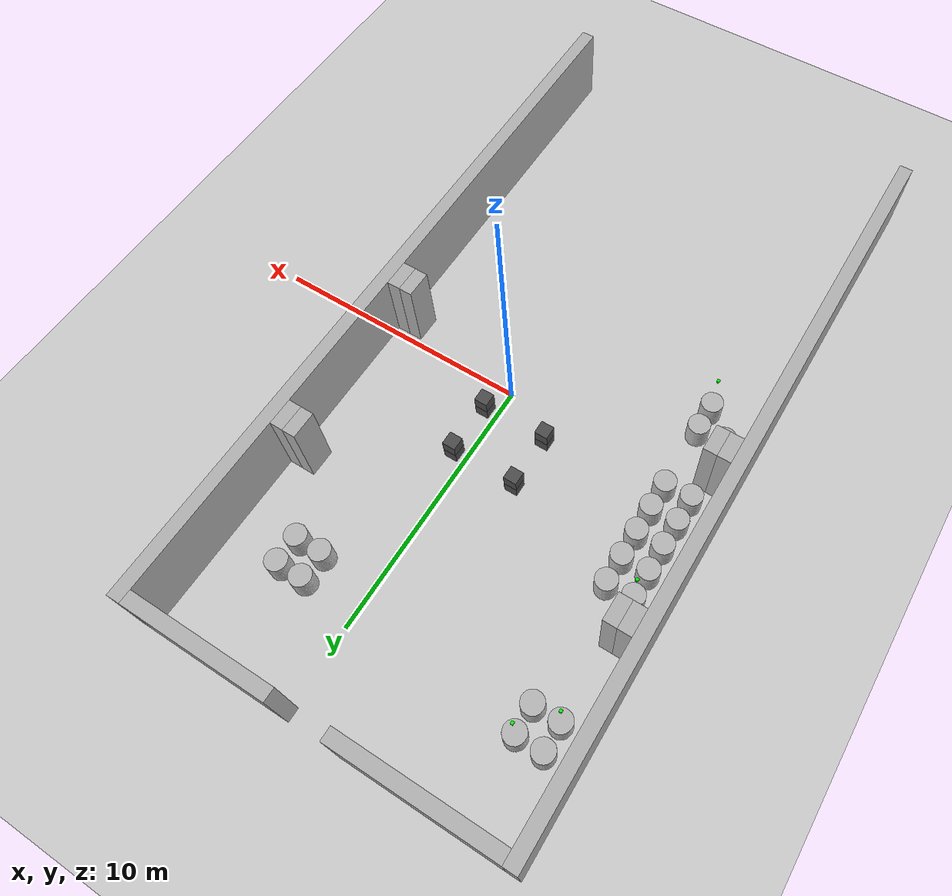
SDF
<sdf version="1.6">
 <world name="default">
  <include><uri>model://ground_plane</uri></include>
  <model name="wall_0">
   <pose frame="sim_world">-8.5 -0.75 1.5 0 0 0</pose>
   <static>True</static>
   <link name="wall_0_link">
    <inertial>
     <mass>100</mass>
     <inertia>
      <ixx>0.166667</ixx>
      <ixy>0</ixy>
      <ixz>0</ixz>
      <iyy>0.166667</iyy>
      <iyz>0</iyz>
      <izz>0.166667</izz>
     </inertia>
    </inertial>
    <collision name="wall_0_collision">
     <geometry><box><size>0.5 28.0 3.0</size></box></geometry>
     <max_contacts>100</max_contacts>
    </collision>
    <visual name="wall_0_visual">
     <geometry><box><size>0.5 28.0 3.0</size></box></geometry>
     <material><ambient>0.7 0.7 0.7 1</ambient><diffuse>0.7 0.7 0.7 1</diffuse></material>
    </visual>
   </link>
  </model>
  <model name="wall_2">
   <pose frame="sim_world">-8.0 -0.75 1.5 0 0 0</pose>
   <static>True</static>
   <link name="wall_2_link">
    <inertial>
     <mass>100</mass>
     <inertia>
      <ixx>0.166667</ixx>
      <ixy>0</ixy>
      <ixz>0</ixz>
      <iyy>0.166667</iyy>
      <iyz>0</iyz>
      <izz>0.166667</izz>
     </inertia>
    </inertial>
    <collision name="wall_2_collision">
     <geometry><box><size>0.5 1.0 3.0</size></box></geometry>
     <max_contacts>100</max_contacts>
    </collision>
    <visual name="wall_2_visual">
     <geometry><box><size>0.5 1.0 3.0</size></box></geometry>
     <material><ambient>0.7 0.7 0.7 1</ambient><diffuse>0.7 0.7 0.7 1</diffuse></material>
    </visual>
   </link>
  </model>
  <model name="wall_3">
   <pose frame="sim_world">-8.0 5.75 1.5 0 0 0</pose>
   <static>True</static>
   <link name="wall_3_link">
    <inertial>
     <mass>100</mass>
     <inertia>
      <ixx>0.166667</ixx>
      <ixy>0</ixy>
      <ixz>0</ixz>
      <iyy>0.166667</iyy>
      <iyz>0</iyz>
      <izz>0.166667</izz>
     </inertia>
    </inertial>
    <collision name="wall_3_collision">
     <geometry><box><size>0.5 1.0 3.0</size></box></geometry>
     <max_contacts>100</max_contacts>
    </collision>
    <visual name="wall_3_visual">
     <geometry><box><size>0.5 1.0 3.0</size></box></geometry>
     <material><ambient>0.7 0.7 0.7 1</ambient><diffuse>0.7 0.7 0.7 1</diffuse></material>
    </visual>
   </link>
  </model>
  <model name="wall_5">
   <pose frame="sim_world">-7.5 -0.75 1.5 0 0 0</pose>
   <static>True</static>
   <link name="wall_5_link">
    <inertial>
     <mass>100</mass>
     <inertia>
      <ixx>0.166667</ixx>
      <ixy>0</ixy>
      <ixz>0</ixz>
      <iyy>0.166667</iyy>
      <iyz>0</iyz>
      <izz>0.166667</izz>
     </inertia>
    </inertial>
    <collision name="wall_5_collision">
     <geometry><box><size>0.5 1.0 3.0</size></box></geometry>
     <max_contacts>100</max_contacts>
    </collision>
    <visual name="wall_5_visual">
     <geometry><box><size>0.5 1.0 3.0</size></box></geometry>
     <material><ambient>0.7 0.7 0.7 1</ambient><diffuse>0.7 0.7 0.7 1</diffuse></material>
    </visual>
   </link>
  </model>
  <model name="wall_6">
   <pose frame="sim_world">-7.5 5.75 1.5 0 0 0</pose>
   <static>True</static>
   <link name="wall_6_link">
    <inertial>
     <mass>100</mass>
     <inertia>
      <ixx>0.166667</ixx>
      <ixy>0</ixy>
      <ixz>0</ixz>
      <iyy>0.166667</iyy>
      <iyz>0</iyz>
      <izz>0.166667</izz>
     </inertia>
    </inertial>
    <collision name="wall_6_collision">
     <geometry><box><size>0.5 1.0 3.0</size></box></geometry>
     <max_contacts>100</max_contacts>
    </collision>
    <visual name="wall_6_visual">
     <geometry><box><size>0.5 1.0 3.0</size></box></geometry>
     <material><ambient>0.7 0.7 0.7 1</ambient><diffuse>0.7 0.7 0.7 1</diffuse></material>
    </visual>
   </link>
  </model>
  <model name="wall_8">
   <pose frame="sim_world">4.5 -0.75 1.5 0 0 0</pose>
   <static>True</static>
   <link name="wall_8_link">
    <inertial>
     <mass>100</mass>
     <inertia>
      <ixx>0.166667</ixx>
      <ixy>0</ixy>
      <ixz>0</ixz>
      <iyy>0.166667</iyy>
      <iyz>0</iyz>
      <izz>0.166667</izz>
     </inertia>
    </inertial>
    <collision name="wall_8_collision">
     <geometry><box><size>0.5 1.0 3.0</size></box></geometry>
     <max_contacts>100</max_contacts>
    </collision>
    <visual name="wall_8_visual">
     <geometry><box><size>0.5 1.0 3.0</size></box></geometry>
     <material><ambient>0.7 0.7 0.7 1</ambient><diffuse>0.7 0.7 0.7 1</diffuse></material>
    </visual>
   </link>
  </model>
  <model name="wall_9">
   <pose frame="sim_world">4.5 5.75 1.5 0 0 0</pose>
   <static>True</static>
   <link name="wall_9_link">
    <inertial>
     <mass>100</mass>
     <inertia>
      <ixx>0.166667</ixx>
      <ixy>0</ixy>
      <ixz>0</ixz>
      <iyy>0.166667</iyy>
      <iyz>0</iyz>
      <izz>0.166667</izz>
     </inertia>
    </inertial>
    <collision name="wall_9_collision">
     <geometry><box><size>0.5 1.0 3.0</size></box></geometry>
     <max_contacts>100</max_contacts>
    </collision>
    <visual name="wall_9_visual">
     <geometry><box><size>0.5 1.0 3.0</size></box></geometry>
     <material><ambient>0.7 0.7 0.7 1</ambient><diffuse>0.7 0.7 0.7 1</diffuse></material>
    </visual>
   </link>
  </model>
  <model name="wall_11">
   <pose frame="sim_world">5.0 -0.75 1.5 0 0 0</pose>
   <static>True</static>
   <link name="wall_11_link">
    <inertial>
     <mass>100</mass>
     <inertia>
      <ixx>0.166667</ixx>
      <ixy>0</ixy>
      <ixz>0</ixz>
      <iyy>0.166667</iyy>
      <iyz>0</iyz>
      <izz>0.166667</izz>
     </inertia>
    </inertial>
    <collision name="wall_11_collision">
     <geometry><box><size>0.5 1.0 3.0</size></box></geometry>
     <max_contacts>100</max_contacts>
    </collision>
    <visual name="wall_11_visual">
     <geometry><box><size>0.5 1.0 3.0</size></box></geometry>
     <material><ambient>0.7 0.7 0.7 1</ambient><diffuse>0.7 0.7 0.7 1</diffuse></material>
    </visual>
   </link>
  </model>
  <model name="wall_12">
   <pose frame="sim_world">5.0 5.75 1.5 0 0 0</pose>
   <static>True</static>
   <link name="wall_12_link">
    <inertial>
     <mass>100</mass>
     <inertia>
      <ixx>0.166667</ixx>
      <ixy>0</ixy>
      <ixz>0</ixz>
      <iyy>0.166667</iyy>
      <iyz>0</iyz>
      <izz>0.166667</izz>
     </inertia>
    </inertial>
    <collision name="wall_12_collision">
     <geometry><box><size>0.5 1.0 3.0</size></box></geometry>
     <max_contacts>100</max_contacts>
    </collision>
    <visual name="wall_12_visual">
     <geometry><box><size>0.5 1.0 3.0</size></box></geometry>
     <material><ambient>0.7 0.7 0.7 1</ambient><diffuse>0.7 0.7 0.7 1</diffuse></material>
    </visual>
   </link>
  </model>
  <model name="wall_13">
   <pose frame="sim_world">5.5 -0.75 1.5 0 0 0</pose>
   <static>True</static>
   <link name="wall_13_link">
    <inertial>
     <mass>100</mass>
     <inertia>
      <ixx>0.166667</ixx>
      <ixy>0</ixy>
      <ixz>0</ixz>
      <iyy>0.166667</iyy>
      <iyz>0</iyz>
      <izz>0.166667</izz>
     </inertia>
    </inertial>
    <collision name="wall_13_collision">
     <geometry><box><size>0.5 28.0 3.0</size></box></geometry>
     <max_contacts>100</max_contacts>
    </collision>
    <visual name="wall_13_visual">
     <geometry><box><size>0.5 28.0 3.0</size></box></geometry>
     <material><ambient>0.7 0.7 0.7 1</ambient><diffuse>0.7 0.7 0.7 1</diffuse></material>
    </visual>
   </link>
  </model>
  <model name="wall_15">
   <pose frame="sim_world">-5.25 13.0 1.5 0 0 0</pose>
   <static>True</static>
   <link name="wall_15_link">
    <inertial>
     <mass>100</mass>
     <inertia>
      <ixx>0.166667</ixx>
      <ixy>0</ixy>
      <ixz>0</ixz>
      <iyy>0.166667</iyy>
      <iyz>0</iyz>
      <izz>0.166667</izz>
     </inertia>
    </inertial>
    <collision name="wall_15_collision">
     <geometry><box><size>6.0 0.5 3.0</size></box></geometry>
     <max_contacts>100</max_contacts>
    </collision>
    <visual name="wall_15_visual">
     <geometry><box><size>6.0 0.5 3.0</size></box></geometry>
     <material><ambient>0.7 0.7 0.7 1</ambient><diffuse>0.7 0.7 0.7 1</diffuse></material>
    </visual>
   </link>
  </model>
  <model name="wall_16">
   <pose frame="sim_world">2.5 13.0 1.5 0 0 0</pose>
   <static>True</static>
   <link name="wall_16_link">
    <inertial>
     <mass>100</mass>
     <inertia>
      <ixx>0.166667</ixx>
      <ixy>0</ixy>
      <ixz>0</ixz>
      <iyy>0.166667</iyy>
      <iyz>0</iyz>
      <izz>0.166667</izz>
     </inertia>
    </inertial>
    <collision name="wall_16_collision">
     <geometry><box><size>5.5 0.5 3.0</size></box></geometry>
     <max_contacts>100</max_contacts>
    </collision>
    <visual name="wall_16_visual">
     <geometry><box><size>5.5 0.5 3.0</size></box></geometry>
     <material><ambient>0.7 0.7 0.7 1</ambient><diffuse>0.7 0.7 0.7 1</diffuse></material>
    </visual>
   </link>
  </model>
  <model name="box_0">
   <pose frame="sim_world">-2.0 1.0 0.25 0 -0 0</pose>
   <static>True</static>
   <link name="box_0_link">
    <inertial>
     <mass>100</mass>
     <inertia>
      <ixx>0.166667</ixx>
      <ixy>0</ixy>
      <ixz>0</ixz>
      <iyy>0.166667</iyy>
      <iyz>0</iyz>
      <izz>0.166667</izz>
     </inertia>
    </inertial>
    <collision name="box_0_collision">
     <geometry><box><size>0.5 0.5 0.5</size></box></geometry>
     <max_contacts>100</max_contacts>
    </collision>
    <visual name="box_0_visual">
     <geometry><box><size>0.5 0.5 0.5</size></box></geometry>
     <material><ambient>0.3 0.3 0.3 1</ambient><diffuse>0.3 0.3 0.3 1</diffuse></material>
    </visual>
   </link>
  </model>
  <model name="box_1">
   <pose frame="sim_world">-2.0 1.0 0.75 0 -0 0</pose>
   <static>True</static>
   <link name="box_1_link">
    <inertial>
     <mass>100</mass>
     <inertia>
      <ixx>0.166667</ixx>
      <ixy>0</ixy>
      <ixz>0</ixz>
      <iyy>0.166667</iyy>
      <iyz>0</iyz>
      <izz>0.166667</izz>
     </inertia>
    </inertial>
    <collision name="box_1_collision">
     <geometry><box><size>0.5 0.5 0.5</size></box></geometry>
     <max_contacts>100</max_contacts>
    </collision>
    <visual name="box_1_visual">
     <geometry><box><size>0.5 0.5 0.5</size></box></geometry>
     <material><ambient>0.3 0.3 0.3 1</ambient><diffuse>0.3 0.3 0.3 1</diffuse></material>
    </visual>
   </link>
  </model>
  <model name="box_2">
   <pose frame="sim_world">-2.0 3.0 0.25 0 -0 0</pose>
   <static>True</static>
   <link name="box_2_link">
    <inertial>
     <mass>100</mass>
     <inertia>
      <ixx>0.166667</ixx>
      <ixy>0</ixy>
      <ixz>0</ixz>
      <iyy>0.166667</iyy>
      <iyz>0</iyz>
      <izz>0.166667</izz>
     </inertia>
    </inertial>
    <collision name="box_2_collision">
     <geometry><box><size>0.5 0.5 0.5</size></box></geometry>
     <max_contacts>100</max_contacts>
    </collision>
    <visual name="box_2_visual">
     <geometry><box><size>0.5 0.5 0.5</size></box></geometry>
     <material><ambient>0.3 0.3 0.3 1</ambient><diffuse>0.3 0.3 0.3 1</diffuse></material>
    </visual>
   </link>
  </model>
  <model name="box_3">
   <pose frame="sim_world">-2.0 3.0 0.75 0 -0 0</pose>
   <static>True</static>
   <link name="box_3_link">
    <inertial>
     <mass>100</mass>
     <inertia>
      <ixx>0.166667</ixx>
      <ixy>0</ixy>
      <ixz>0</ixz>
      <iyy>0.166667</iyy>
      <iyz>0</iyz>
      <izz>0.166667</izz>
     </inertia>
    </inertial>
    <collision name="box_3_collision">
     <geometry><box><size>0.5 0.5 0.5</size></box></geometry>
     <max_contacts>100</max_contacts>
    </collision>
    <visual name="box_3_visual">
     <geometry><box><size>0.5 0.5 0.5</size></box></geometry>
     <material><ambient>0.3 0.3 0.3 1</ambient><diffuse>0.3 0.3 0.3 1</diffuse></material>
    </visual>
   </link>
  </model>
  <model name="box_22">
   <pose frame="sim_world">0.5 1.0 0.25 0 -0 0</pose>
   <static>True</static>
   <link name="box_22_link">
    <inertial>
     <mass>100</mass>
     <inertia>
      <ixx>0.166667</ixx>
      <ixy>0</ixy>
      <ixz>0</ixz>
      <iyy>0.166667</iyy>
      <iyz>0</iyz>
      <izz>0.166667</izz>
     </inertia>
    </inertial>
    <collision name="box_22_collision">
     <geometry><box><size>0.5 0.5 0.5</size></box></geometry>
     <max_contacts>100</max_contacts>
    </collision>
    <visual name="box_22_visual">
     <geometry><box><size>0.5 0.5 0.5</size></box></geometry>
     <material><ambient>0.3 0.3 0.3 1</ambient><diffuse>0.3 0.3 0.3 1</diffuse></material>
    </visual>
   </link>
  </model>
  <model name="box_23">
   <pose frame="sim_world">0.5 1.0 0.75 0 -0 0</pose>
   <static>True</static>
   <link name="box_23_link">
    <inertial>
     <mass>100</mass>
     <inertia>
      <ixx>0.166667</ixx>
      <ixy>0</ixy>
      <ixz>0</ixz>
      <iyy>0.166667</iyy>
      <iyz>0</iyz>
      <izz>0.166667</izz>
     </inertia>
    </inertial>
    <collision name="box_23_collision">
     <geometry><box><size>0.5 0.5 0.5</size></box></geometry>
     <max_contacts>100</max_contacts>
    </collision>
    <visual name="box_23_visual">
     <geometry><box><size>0.5 0.5 0.5</size></box></geometry>
     <material><ambient>0.3 0.3 0.3 1</ambient><diffuse>0.3 0.3 0.3 1</diffuse></material>
    </visual>
   </link>
  </model>
  <model name="box_24">
   <pose frame="sim_world">0.5 3.0 0.25 0 -0 0</pose>
   <static>True</static>
   <link name="box_24_link">
    <inertial>
     <mass>100</mass>
     <inertia>
      <ixx>0.166667</ixx>
      <ixy>0</ixy>
      <ixz>0</ixz>
      <iyy>0.166667</iyy>
      <iyz>0</iyz>
      <izz>0.166667</izz>
     </inertia>
    </inertial>
    <collision name="box_24_collision">
     <geometry><box><size>0.5 0.5 0.5</size></box></geometry>
     <max_contacts>100</max_contacts>
    </collision>
    <visual name="box_24_visual">
     <geometry><box><size>0.5 0.5 0.5</size></box></geometry>
     <material><ambient>0.3 0.3 0.3 1</ambient><diffuse>0.3 0.3 0.3 1</diffuse></material>
    </visual>
   </link>
  </model>
  <model name="box_25">
   <pose frame="sim_world">0.5 3.0 0.75 0 -0 0</pose>
   <static>True</static>
   <link name="box_25_link">
    <inertial>
     <mass>100</mass>
     <inertia>
      <ixx>0.166667</ixx>
      <ixy>0</ixy>
      <ixz>0</ixz>
      <iyy>0.166667</iyy>
      <iyz>0</iyz>
      <izz>0.166667</izz>
     </inertia>
    </inertial>
    <collision name="box_25_collision">
     <geometry><box><size>0.5 0.5 0.5</size></box></geometry>
     <max_contacts>100</max_contacts>
    </collision>
    <visual name="box_25_visual">
     <geometry><box><size>0.5 0.5 0.5</size></box></geometry>
     <material><ambient>0.3 0.3 0.3 1</ambient><diffuse>0.3 0.3 0.3 1</diffuse></material>
    </visual>
   </link>
  </model>
  <model name="barrel_10">
   <pose>-7.50114239477 -1.9993578155 0.5 0 -0 0</pose>
   <static>true</static>
   <link name="link_barrel_10">
    <collision name="collision_barrel_10">
     <geometry><mesh><uri>model://barrel_store_custom/models/barrel_10.dae</uri></mesh></geometry>
    </collision>
    <visual name="visual_barrel_10">
     <geometry><mesh><uri>model://barrel_store_custom/models/barrel_10.dae</uri></mesh></geometry>
    </visual>
   </link>
  </model>
  <model name="barrel_11">
   <pose>-7.50279670955 0.49588956778 0.5 0 -0 0</pose>
   <static>true</static>
   <link name="link_barrel_11">
    <collision name="collision_barrel_11">
     <geometry><mesh><uri>model://barrel_store_custom/models/barrel_11.dae</uri></mesh></geometry>
    </collision>
    <visual name="visual_barrel_11">
     <geometry><mesh><uri>model://barrel_store_custom/models/barrel_11.dae</uri></mesh></geometry>
    </visual>
   </link>
  </model>
  <model name="barrel_12">
   <pose>-7.50300625578 1.49810745039 0.5 0 -0 0</pose>
   <static>true</static>
   <link name="link_barrel_12">
    <collision name="collision_barrel_12">
     <geometry><mesh><uri>model://barrel_store_custom/models/barrel_12.dae</uri></mesh></geometry>
    </collision>
    <visual name="visual_barrel_12">
     <geometry><mesh><uri>model://barrel_store_custom/models/barrel_12.dae</uri></mesh></geometry>
    </visual>
   </link>
  </model>
  <model name="barrel_13">
   <pose>-7.49558838549 2.49713480999 0.5 0 -0 0</pose>
   <static>true</static>
   <link name="link_barrel_13">
    <collision name="collision_barrel_13">
     <geometry><mesh><uri>model://barrel_store_custom/models/barrel_13.dae</uri></mesh></geometry>
    </collision>
    <visual name="visual_barrel_13">
     <geometry><mesh><uri>model://barrel_store_custom/models/barrel_13.dae</uri></mesh></geometry>
    </visual>
   </link>
  </model>
  <model name="barrel_14">
   <pose>-7.50188878479 3.49967507384 0.5 0 -0 0</pose>
   <static>true</static>
   <link name="link_barrel_14">
    <collision name="collision_barrel_14">
     <geometry><mesh><uri>model://barrel_store_custom/models/barrel_14.dae</uri></mesh></geometry>
    </collision>
    <visual name="visual_barrel_14">
     <geometry><mesh><uri>model://barrel_store_custom/models/barrel_14.dae</uri></mesh></geometry>
    </visual>
   </link>
  </model>
  <model name="barrel_15">
   <pose>-7.50159085069 4.49686885913 0.5 0 -0 0</pose>
   <static>true</static>
   <link name="link_barrel_15">
    <collision name="collision_barrel_15">
     <geometry><mesh><uri>model://barrel_store_custom/models/barrel_15.dae</uri></mesh></geometry>
    </collision>
    <visual name="visual_barrel_15">
     <geometry><mesh><uri>model://barrel_store_custom/models/barrel_15.dae</uri></mesh></geometry>
    </visual>
   </link>
   <model name="radiation_source_barrel_15">
    <pose>0.00109201669693 0.00354701280594 -1.72853469849e-06 0 0 0</pose>
    <static>true</static>
    <link name="link_radiation_source_barrel_15">
     <visual name="visual_radiation_source_barrel_15_0">
      <geometry><box><size>0.1 0.1 0.1</size></box></geometry>
      <material><ambient>1 0.0  0 1.0</ambient><diffuse>1 0.0  0 1.0</diffuse></material>
     </visual>
     <visual name="visual_radiation_source_barrel_15_1">
      <pose>0 0 2.0 0 0 0</pose>
      <geometry><box><size>0.1 0.1 0.1</size></box></geometry>
      <material><ambient>0 1.0  0 1.0</ambient><diffuse>0 1.0  0 1.0</diffuse></material>
     </visual>
     <sensor name="radiation_source_barrel_15" type="radiation_source">
      <always_on>1</always_on>
      <update_rate>1.0</update_rate>
      <topic>source_6/gamma</topic>
      <plugin filename="libradiation_source_plugin.so" name="radiation_source_plugin"/>
     </sensor>
    </link>
   </model>
  </model>
  <model name="barrel_16">
   <pose>-7.50246693743 9.0035488383 0.5 0 -0 0</pose>
   <static>true</static>
   <link name="link_barrel_16">
    <collision name="collision_barrel_16">
     <geometry><mesh><uri>model://barrel_store_custom/models/barrel_16.dae</uri></mesh></geometry>
    </collision>
    <visual name="visual_barrel_16">
     <geometry><mesh><uri>model://barrel_store_custom/models/barrel_16.dae</uri></mesh></geometry>
    </visual>
   </link>
   <model name="radiation_source_barrel_16">
    <pose>0.00109201669693 0.00354701280594 -1.72853469849e-06 0 0 0</pose>
    <static>true</static>
    <link name="link_radiation_source_barrel_16">
     <visual name="visual_radiation_source_barrel_16_0">
      <geometry><box><size>0.1 0.1 0.1</size></box></geometry>
      <material><ambient>1 0.0  0 1.0</ambient><diffuse>1 0.0  0 1.0</diffuse></material>
     </visual>
     <visual name="visual_radiation_source_barrel_16_1">
      <pose>0 0 2.0 0 0 0</pose>
      <geometry><box><size>0.1 0.1 0.1</size></box></geometry>
      <material><ambient>0 1.0  0 1.0</ambient><diffuse>0 1.0  0 1.0</diffuse></material>
     </visual>
     <sensor name="radiation_source_barrel_16" type="radiation_source">
      <always_on>1</always_on>
      <update_rate>1.0</update_rate>
      <topic>source_1/gamma</topic>
      <plugin filename="libradiation_source_plugin.so" name="radiation_source_plugin"/>
     </sensor>
    </link>
   </model>
  </model>
  <model name="barrel_17">
   <pose>-7.50246590527 9.99768880188 0.5 0 -0 0</pose>
   <static>true</static>
   <link name="link_barrel_17">
    <collision name="collision_barrel_17">
     <geometry><mesh><uri>model://barrel_store_custom/models/barrel_17.dae</uri></mesh></geometry>
    </collision>
    <visual name="visual_barrel_17">
     <geometry><mesh><uri>model://barrel_store_custom/models/barrel_17.dae</uri></mesh></geometry>
    </visual>
   </link>
  </model>
  <model name="barrel_27">
   <pose>-6.50053900119 -3.00223052578 0.5 0 -0 0</pose>
   <static>true</static>
   <link name="link_barrel_27">
    <collision name="collision_barrel_27">
     <geometry><mesh><uri>model://barrel_store_custom/models/barrel_27.dae</uri></mesh></geometry>
    </collision>
    <visual name="visual_barrel_27">
     <geometry><mesh><uri>model://barrel_store_custom/models/barrel_27.dae</uri></mesh></geometry>
    </visual>
   </link>
   <model name="radiation_source_barrel_27">
    <pose>0.00483101606369 -0.000752449035645 -1.72853469849e-06 0 0 0</pose>
    <static>true</static>
    <link name="link_radiation_source_barrel_27">
     <visual name="visual_radiation_source_barrel_27_0">
      <geometry><box><size>0.1 0.1 0.1</size></box></geometry>
      <material><ambient>1 0.0  0 1.0</ambient><diffuse>1 0.0  0 1.0</diffuse></material>
     </visual>
     <visual name="visual_radiation_source_barrel_27_1">
      <pose>0 0 2.0 0 0 0</pose>
      <geometry><box><size>0.1 0.1 0.1</size></box></geometry>
      <material><ambient>0 1.0  0 1.0</ambient><diffuse>0 1.0  0 1.0</diffuse></material>
     </visual>
     <sensor name="radiation_source_barrel_27" type="radiation_source">
      <always_on>1</always_on>
      <update_rate>1.0</update_rate>
      <topic>source_4/gamma</topic>
      <plugin filename="libradiation_source_plugin.so" name="radiation_source_plugin"/>
     </sensor>
    </link>
   </model>
  </model>
  <model name="barrel_28">
   <pose>-6.50231335976 -2.00365457262 0.5 0 -0 0</pose>
   <static>true</static>
   <link name="link_barrel_28">
    <collision name="collision_barrel_28">
     <geometry><mesh><uri>model://barrel_store_custom/models/barrel_28.dae</uri></mesh></geometry>
    </collision>
    <visual name="visual_barrel_28">
     <geometry><mesh><uri>model://barrel_store_custom/models/barrel_28.dae</uri></mesh></geometry>
    </visual>
   </link>
  </model>
  <model name="barrel_29">
   <pose>-6.49702010359 0.501031346884 0.5 0 -0 0</pose>
   <static>true</static>
   <link name="link_barrel_29">
    <collision name="collision_barrel_29">
     <geometry><mesh><uri>model://barrel_store_custom/models/barrel_29.dae</uri></mesh></geometry>
    </collision>
    <visual name="visual_barrel_29">
     <geometry><mesh><uri>model://barrel_store_custom/models/barrel_29.dae</uri></mesh></geometry>
    </visual>
   </link>
  </model>
  <model name="barrel_30">
   <pose>-6.4998662537 1.50041963211 0.5 0 -0 0</pose>
   <static>true</static>
   <link name="link_barrel_30">
    <collision name="collision_barrel_30">
     <geometry><mesh><uri>model://barrel_store_custom/models/barrel_30.dae</uri></mesh></geometry>
    </collision>
    <visual name="visual_barrel_30">
     <geometry><mesh><uri>model://barrel_store_custom/models/barrel_30.dae</uri></mesh></geometry>
    </visual>
   </link>
  </model>
  <model name="barrel_31">
   <pose>-6.49925142537 2.49520741355 0.5 0 -0 0</pose>
   <static>true</static>
   <link name="link_barrel_31">
    <collision name="collision_barrel_31">
     <geometry><mesh><uri>model://barrel_store_custom/models/barrel_31.dae</uri></mesh></geometry>
    </collision>
    <visual name="visual_barrel_31">
     <geometry><mesh><uri>model://barrel_store_custom/models/barrel_31.dae</uri></mesh></geometry>
    </visual>
   </link>
  </model>
  <model name="barrel_32">
   <pose>-6.50001449846 3.49739395479 0.5 0 -0 0</pose>
   <static>true</static>
   <link name="link_barrel_32">
    <collision name="collision_barrel_32">
     <geometry><mesh><uri>model://barrel_store_custom/models/barrel_32.dae</uri></mesh></geometry>
    </collision>
    <visual name="visual_barrel_32">
     <geometry><mesh><uri>model://barrel_store_custom/models/barrel_32.dae</uri></mesh></geometry>
    </visual>
   </link>
  </model>
  <model name="barrel_33">
   <pose>-6.50031037946 4.50427497851 0.5 0 -0 0</pose>
   <static>true</static>
   <link name="link_barrel_33">
    <collision name="collision_barrel_33">
     <geometry><mesh><uri>model://barrel_store_custom/models/barrel_33.dae</uri></mesh></geometry>
    </collision>
    <visual name="visual_barrel_33">
     <geometry><mesh><uri>model://barrel_store_custom/models/barrel_33.dae</uri></mesh></geometry>
    </visual>
   </link>
  </model>
  <model name="barrel_34">
   <pose>-6.50054506113 8.99662204493 0.5 0 -0 0</pose>
   <static>true</static>
   <link name="link_barrel_34">
    <collision name="collision_barrel_34">
     <geometry><mesh><uri>model://barrel_store_custom/models/barrel_34.dae</uri></mesh></geometry>
    </collision>
    <visual name="visual_barrel_34">
     <geometry><mesh><uri>model://barrel_store_custom/models/barrel_34.dae</uri></mesh></geometry>
    </visual>
   </link>
  </model>
  <model name="barrel_35">
   <pose>-6.497243487 10.0045745159 0.5 0 -0 0</pose>
   <static>true</static>
   <link name="link_barrel_35">
    <collision name="collision_barrel_35">
     <geometry><mesh><uri>model://barrel_store_custom/models/barrel_35.dae</uri></mesh></geometry>
    </collision>
    <visual name="visual_barrel_35">
     <geometry><mesh><uri>model://barrel_store_custom/models/barrel_35.dae</uri></mesh></geometry>
    </visual>
   </link>
   <model name="radiation_source_barrel_35">
    <pose>0.0042559504509 -0.000965476036072 -1.72853469849e-06 0 0 0</pose>
    <static>true</static>
    <link name="link_radiation_source_barrel_35">
     <visual name="visual_radiation_source_barrel_35_0">
      <geometry><box><size>0.1 0.1 0.1</size></box></geometry>
      <material><ambient>1 0.0  0 1.0</ambient><diffuse>1 0.0  0 1.0</diffuse></material>
     </visual>
     <visual name="visual_radiation_source_barrel_35_1">
      <pose>0 0 2.0 0 0 0</pose>
      <geometry><box><size>0.1 0.1 0.1</size></box></geometry>
      <material><ambient>0 1.0  0 1.0</ambient><diffuse>0 1.0  0 1.0</diffuse></material>
     </visual>
     <sensor name="radiation_source_barrel_35" type="radiation_source">
      <always_on>1</always_on>
      <update_rate>1.0</update_rate>
      <topic>source_3/gamma</topic>
      <plugin filename="libradiation_source_plugin.so" name="radiation_source_plugin"/>
     </sensor>
    </link>
   </model>
  </model>
  <model name="barrel_36">
   <pose>1.99836590304 8.50486053371 0.5 0 -0 0</pose>
   <static>true</static>
   <link name="link_barrel_36">
    <collision name="collision_barrel_36">
     <geometry><mesh><uri>model://barrel_store_custom/models/barrel_36.dae</uri></mesh></geometry>
    </collision>
    <visual name="visual_barrel_36">
     <geometry><mesh><uri>model://barrel_store_custom/models/barrel_36.dae</uri></mesh></geometry>
    </visual>
   </link>
  </model>
  <model name="barrel_37">
   <pose>1.99944636211 9.49980742181 0.5 0 -0 0</pose>
   <static>true</static>
   <link name="link_barrel_37">
    <collision name="collision_barrel_37">
     <geometry><mesh><uri>model://barrel_store_custom/models/barrel_37.dae</uri></mesh></geometry>
    </collision>
    <visual name="visual_barrel_37">
     <geometry><mesh><uri>model://barrel_store_custom/models/barrel_37.dae</uri></mesh></geometry>
    </visual>
   </link>
  </model>
  <model name="barrel_38">
   <pose>2.99646932365 8.49600360382 0.5 0 -0 0</pose>
   <static>true</static>
   <link name="link_barrel_38">
    <collision name="collision_barrel_38">
     <geometry><mesh><uri>model://barrel_store_custom/models/barrel_38.dae</uri></mesh></geometry>
    </collision>
    <visual name="visual_barrel_38">
     <geometry><mesh><uri>model://barrel_store_custom/models/barrel_38.dae</uri></mesh></geometry>
    </visual>
   </link>
  </model>
  <model name="barrel_39">
   <pose>2.99528349745 9.49799642115 0.5 0 -0 0</pose>
   <static>true</static>
   <link name="link_barrel_39">
    <collision name="collision_barrel_39">
     <geometry><mesh><uri>model://barrel_store_custom/models/barrel_39.dae</uri></mesh></geometry>
    </collision>
    <visual name="visual_barrel_39">
     <geometry><mesh><uri>model://barrel_store_custom/models/barrel_39.dae</uri></mesh></geometry>
    </visual>
   </link>
  </model>
  <model name="ground_plane"><link name="ground_plane"/></model>
 </world>
</sdf>
